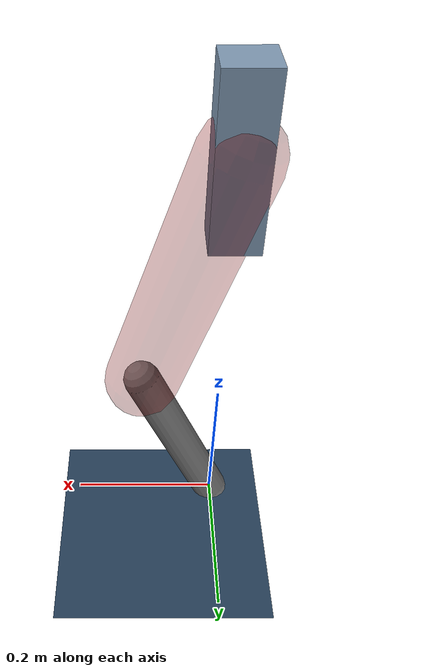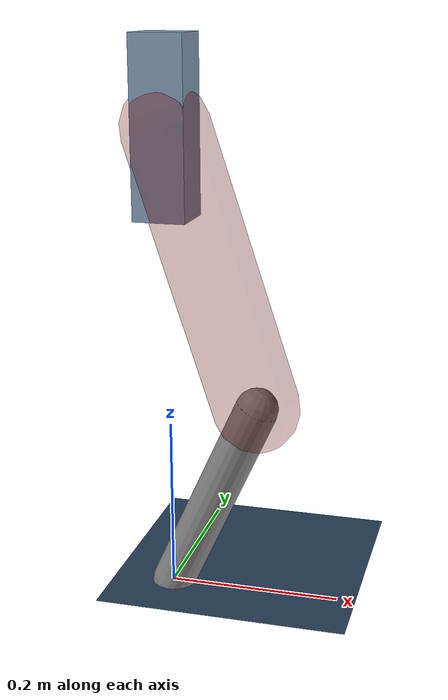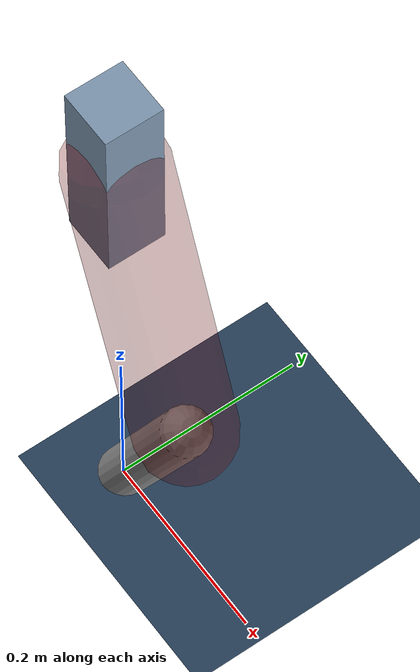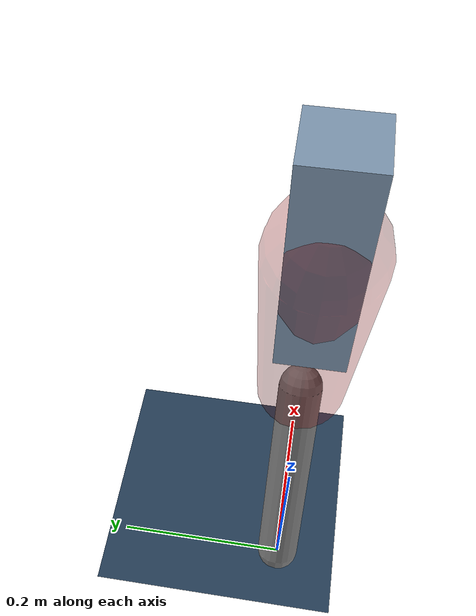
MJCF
<mujoco model="Hopper2D">
	<compiler inertiafromgeom="true" angle="radian" />
	<option timestep="0.001" integrator="implicit" cone="elliptic" solver="Newton" tolerance="1e-10" />

	<default>
		<geom contype="1" conaffinity="1" condim="3" friction="2 0.005 0.0001" solref="0.005 1" />
		<joint limited="true" damping="0.1" />
	</default>

	<asset>
		<texture name="skybox" type="skybox" builtin="gradient" rgb1=".4 .6 .8" rgb2="0 0 0" width="800" height="800" />
		<texture name="grid" type="2d" builtin="checker" rgb1=".1 .2 .3" rgb2=".2 .3 .4" width="300" height="300" mark="edge" markrgb=".2 .3 .4" />
		<material name="ground" texture="grid" texrepeat="1 1" texuniform="true" reflectance="0.1" />
		<material name="leg" rgba="0.5 0.6 0.7 1" />
	</asset>

	<worldbody>

		<geom name="floor" type="plane" size="5 5 0.25" material="ground" />

		<light directional="false" diffuse="0.8 0.8 0.8" specular="0.3 0.3 0.3" pos="0 0 2" dir="0 0 -1" />
		<light mode="targetbodycom" target="base" directional="false" diffuse="0.8 0.8 0.8" specular="0.3 0.3 0.3" pos="0 0 2" dir="0 0 -1" />

		<camera name="fixed" pos="0 -2 1" xyaxes="1 0 0 0 0 1" />
		<camera name="tracking" mode="trackcom" pos="0 -3 1" />

		<body name="root" pos="0 0 0.5432622144718032">
			<joint name="slide_x" type="slide" axis="1 0 0" range="-100 100" />
			<joint name="slide_z" type="slide" axis="0 0 1" range="0 10" />

			<body name="base" pos="0 0 0">
				<geom name="torso" type="box" size="0.03 0.03 0.1" mass="3.3770000000000002" material="leg" />

				<body name="link1" pos="0 0 0" euler="0 1.2535030091354353 0">
					<joint type="hinge" axis="0 -1 0" pos="0 0 0" name="hinge1" limited="true" range="-3.14 3.14" stiffness="0" damping="0.1" />
					<geom name="thigh" type="capsule" fromto="0 0 0 0.33131964001664294 0 0" size="0.05" rgba="0.5 0 0 0.3" mass="1.0744949920466003" />

					<body name="link2" pos="0.33131964001664294 0 0" euler="0 0.742161899062963 0">
						<joint type="hinge" axis="0 -1 0" pos="0 0 0" name="hinge2" limited="true" range="-3.14 3.14" stiffness="0" damping="0.1" />
						<geom name="shank" type="capsule" fromto="0 0 0 0.2507767658410067 0 0" size="0.025" mass="0.4431214126728054" />

					</body>
				</body>
			</body>
		</body>
	</worldbody>

	<actuator>
		<motor name="torque1" joint="hinge1" ctrlrange="-252.67327332525252 252.67327332525252" ctrllimited="true" gear="1" />
		<motor name="torque2" joint="hinge2" ctrlrange="-60.27215551805784 60.27215551805784" ctrllimited="true" gear="1" />
	</actuator>
</mujoco>
